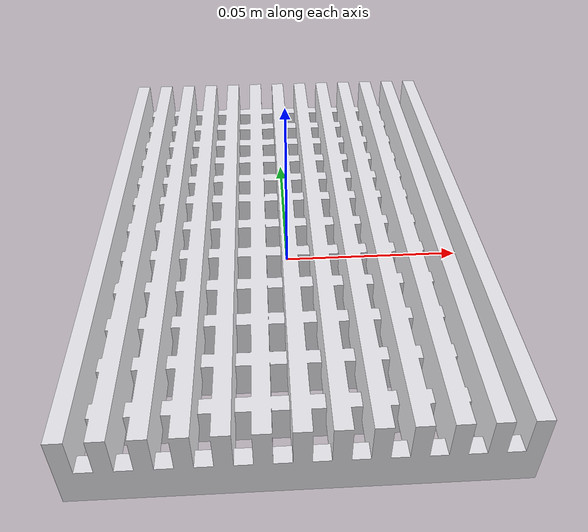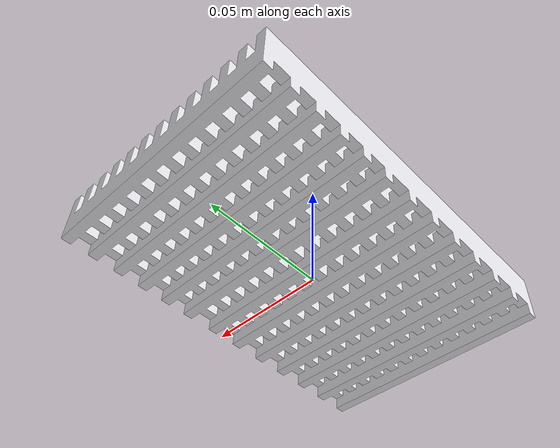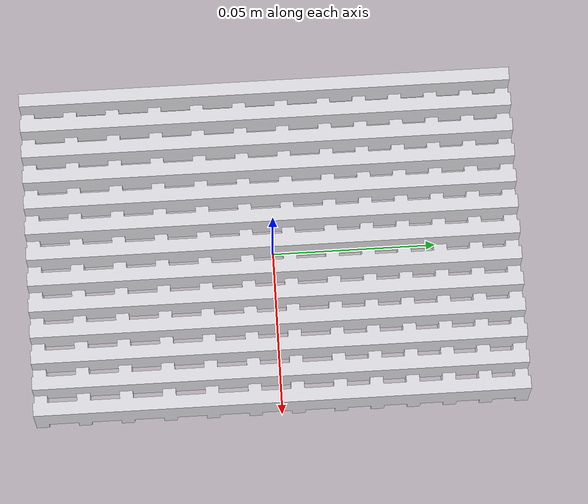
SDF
<?xml version="1.0" ?>
<sdf version="1.7">
  <model name="escurridor_60">
    <static>true</static>
    <link name="link">

      <collision name="collision">
        <pose>-0.009 0.020 0 0 0 0</pose>
        <geometry>
          <mesh>
            <uri>model://escurridor_60/meshes/escurridor_60.stl</uri>
            <scale>0.001 0.001 0.001</scale>
          </mesh>
        </geometry>
        <surface>
          <friction>
            <ode><mu>0.9</mu><mu2>0.9</mu2></ode>
          </friction>
          <contact>
            <ode>
              <kp>1e6</kp>
              <kd>100</kd>
              <min_depth>0.0005</min_depth>
            </ode>
          </contact>
        </surface>
        <max_contacts>20</max_contacts>
      </collision>

      <visual name="visual">
        <pose>-0.009 0.020 0 0 0 0</pose>
        <geometry>
          <mesh>
            <uri>model://escurridor_60/meshes/escurridor_60.stl</uri>
            <scale>0.001 0.001 0.001</scale>
          </mesh>
        </geometry>
        <material>
          <ambient>0.80 0.80 0.82 1</ambient>
          <diffuse>0.92 0.92 0.94 1</diffuse>
          <specular>0.2 0.2 0.2 1</specular>
        </material>
      </visual>

    </link>
  </model>
</sdf>
